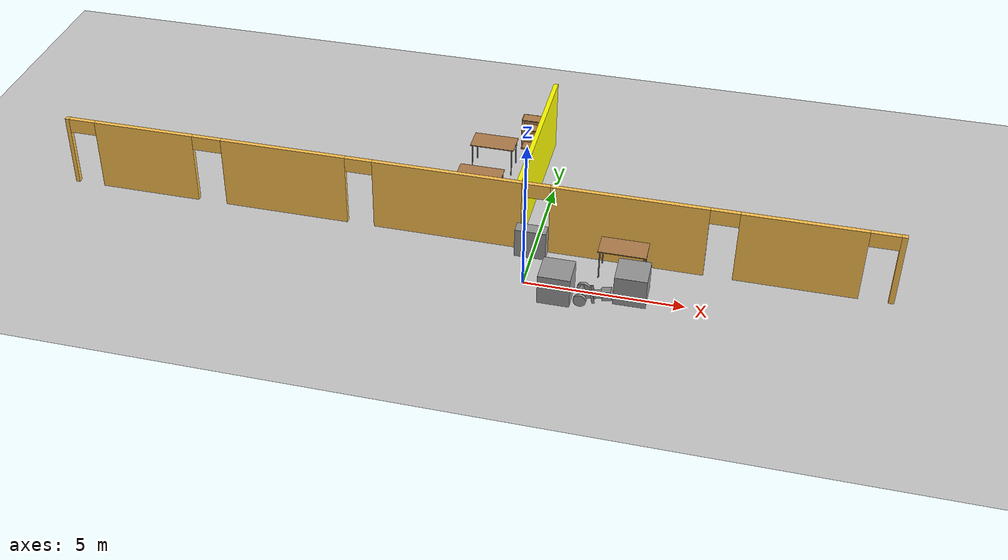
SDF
<sdf version="1.6">
 <world name="default">
  <model name="ground_plane">
   <static>1</static>
   <link name="link">
    <collision name="collision">
     <geometry><plane><normal>0 0 1</normal><size>100 100</size></plane></geometry>
     <surface><friction><ode><mu>100</mu><mu2>50</mu2></ode></friction></surface>
    </collision>
    <visual name="visual">
     <cast_shadows>0</cast_shadows>
     <geometry><plane><normal>0 0 1</normal><size>100 100</size></plane></geometry>
     <material>
      <script><uri>file://media/materials/scripts/gazebo.material</uri><name>Gazebo/Grey</name></script>
     </material>
    </visual>
   </link>
  </model>
  <model name="mybuilding">
   <pose>-2.36213 -0.825276 0 0 -0 0</pose>
   <link name="Wall_149">
    <collision name="Wall_149_Collision">
     <geometry><box><size>6 0.15 2.5</size></box></geometry>
     <pose>0 0 1.25 0 -0 0</pose>
    </collision>
    <visual name="Wall_149_Visual">
     <pose>0 0 1.25 0 -0 0</pose>
     <geometry><box><size>6 0.15 2.5</size></box></geometry>
     <material>
      <script><uri>file://media/materials/scripts/gazebo.material</uri><name>Gazebo/Grey</name></script>
      <ambient>1 1 0 1</ambient>
     </material>
     <meta><layer>0</layer></meta>
    </visual>
    <pose>1.80042 5.59279 0 0 0 -1.5708</pose>
   </link>
   <link name="Wall_94">
    <pose>0.000509 2.58798 0 0 -0 0</pose>
    <visual name="Wall_94_Visual_0">
     <pose>-13.4076 0 1.25 0 -0 0</pose>
     <geometry><box><size>0.134873 0.15 2.5</size></box></geometry>
     <material>
      <script><uri>file://media/materials/scripts/gazebo.material</uri><name>Gazebo/Grey</name></script>
      <ambient>1 0.764706 0.305882 1</ambient>
     </material>
     <meta><layer>0</layer></meta>
    </visual>
    <collision name="Wall_94_Collision_0">
     <geometry><box><size>0.134873 0.15 2.5</size></box></geometry>
     <pose>-13.4076 0 1.25 0 -0 0</pose>
    </collision>
    <visual name="Wall_94_Visual_1">
     <pose>-10.7308 0 1.25 0 -0 0</pose>
     <geometry><box><size>3.41873 0.15 2.5</size></box></geometry>
     <material>
      <script><uri>file://media/materials/scripts/gazebo.material</uri><name>Gazebo/Grey</name></script>
      <ambient>1 0.764706 0.305882 1</ambient>
     </material>
     <meta><layer>0</layer></meta>
    </visual>
    <collision name="Wall_94_Collision_1">
     <geometry><box><size>3.41873 0.15 2.5</size></box></geometry>
     <pose>-10.7308 0 1.25 0 -0 0</pose>
    </collision>
    <visual name="Wall_94_Visual_2">
     <pose>-5.94135 0 1.25 0 -0 0</pose>
     <geometry><box><size>4.19405 0.15 2.5</size></box></geometry>
     <material>
      <script><uri>file://media/materials/scripts/gazebo.material</uri><name>Gazebo/Grey</name></script>
      <ambient>1 0.764706 0.305882 1</ambient>
     </material>
     <meta><layer>0</layer></meta>
    </visual>
    <collision name="Wall_94_Collision_2">
     <geometry><box><size>4.19405 0.15 2.5</size></box></geometry>
     <pose>-5.94135 0 1.25 0 -0 0</pose>
    </collision>
    <visual name="Wall_94_Visual_3">
     <pose>-0.522336 0 1.25 0 -0 0</pose>
     <geometry><box><size>4.84399 0.15 2.5</size></box></geometry>
     <material>
      <script><uri>file://media/materials/scripts/gazebo.material</uri><name>Gazebo/Grey</name></script>
      <ambient>1 0.764706 0.305882 1</ambient>
     </material>
     <meta><layer>0</layer></meta>
    </visual>
    <collision name="Wall_94_Collision_3">
     <geometry><box><size>4.84399 0.15 2.5</size></box></geometry>
     <pose>-0.522336 0 1.25 0 -0 0</pose>
    </collision>
    <visual name="Wall_94_Visual_4">
     <pose>5.25225 0 1.25 0 -0 0</pose>
     <geometry><box><size>4.90518 0.15 2.5</size></box></geometry>
     <material>
      <script><uri>file://media/materials/scripts/gazebo.material</uri><name>Gazebo/Grey</name></script>
      <ambient>1 0.764706 0.305882 1</ambient>
     </material>
     <meta><layer>0</layer></meta>
    </visual>
    <collision name="Wall_94_Collision_4">
     <geometry><box><size>4.90518 0.15 2.5</size></box></geometry>
     <pose>5.25225 0 1.25 0 -0 0</pose>
    </collision>
    <visual name="Wall_94_Visual_5">
     <pose>10.5045 0 1.25 0 -0 0</pose>
     <geometry><box><size>3.79929 0.15 2.5</size></box></geometry>
     <material>
      <script><uri>file://media/materials/scripts/gazebo.material</uri><name>Gazebo/Grey</name></script>
      <ambient>1 0.764706 0.305882 1</ambient>
     </material>
     <meta><layer>0</layer></meta>
    </visual>
    <collision name="Wall_94_Collision_5">
     <geometry><box><size>3.79929 0.15 2.5</size></box></geometry>
     <pose>10.5045 0 1.25 0 -0 0</pose>
    </collision>
    <visual name="Wall_94_Visual_6">
     <pose>13.3896 0 1.25 0 -0 0</pose>
     <geometry><box><size>0.170873 0.15 2.5</size></box></geometry>
     <material>
      <script><uri>file://media/materials/scripts/gazebo.material</uri><name>Gazebo/Grey</name></script>
      <ambient>1 0.764706 0.305882 1</ambient>
     </material>
     <meta><layer>0</layer></meta>
    </visual>
    <collision name="Wall_94_Collision_6">
     <geometry><box><size>0.170873 0.15 2.5</size></box></geometry>
     <pose>13.3896 0 1.25 0 -0 0</pose>
    </collision>
    <visual name="Wall_94_Visual_7">
     <pose>-12.8901 0 2.25 0 -0 0</pose>
     <geometry><box><size>0.9 0.15 0.5</size></box></geometry>
     <material>
      <script><uri>file://media/materials/scripts/gazebo.material</uri><name>Gazebo/Grey</name></script>
      <ambient>1 0.764706 0.305882 1</ambient>
     </material>
     <meta><layer>0</layer></meta>
    </visual>
    <collision name="Wall_94_Collision_7">
     <geometry><box><size>0.9 0.15 0.5</size></box></geometry>
     <pose>-12.8901 0 2.25 0 -0 0</pose>
    </collision>
    <visual name="Wall_94_Visual_8">
     <pose>-8.52989 0 2.25 0 -0 0</pose>
     <geometry><box><size>0.983019 0.15 0.5</size></box></geometry>
     <material>
      <script><uri>file://media/materials/scripts/gazebo.material</uri><name>Gazebo/Grey</name></script>
      <ambient>1 0.764706 0.305882 1</ambient>
     </material>
     <meta><layer>0</layer></meta>
    </visual>
    <collision name="Wall_94_Collision_8">
     <geometry><box><size>0.983019 0.15 0.5</size></box></geometry>
     <pose>-8.52989 0 2.25 0 -0 0</pose>
    </collision>
    <visual name="Wall_94_Visual_9">
     <pose>-3.39433 0 2.25 0 -0 0</pose>
     <geometry><box><size>0.9 0.15 0.5</size></box></geometry>
     <material>
      <script><uri>file://media/materials/scripts/gazebo.material</uri><name>Gazebo/Grey</name></script>
      <ambient>1 0.764706 0.305882 1</ambient>
     </material>
     <meta><layer>0</layer></meta>
    </visual>
    <collision name="Wall_94_Collision_9">
     <geometry><box><size>0.9 0.15 0.5</size></box></geometry>
     <pose>-3.39433 0 2.25 0 -0 0</pose>
    </collision>
    <visual name="Wall_94_Visual_10">
     <pose>2.34966 0 2.25 0 -0 0</pose>
     <geometry><box><size>0.9 0.15 0.5</size></box></geometry>
     <material>
      <script><uri>file://media/materials/scripts/gazebo.material</uri><name>Gazebo/Grey</name></script>
      <ambient>1 0.764706 0.305882 1</ambient>
     </material>
     <meta><layer>0</layer></meta>
    </visual>
    <collision name="Wall_94_Collision_10">
     <geometry><box><size>0.9 0.15 0.5</size></box></geometry>
     <pose>2.34966 0 2.25 0 -0 0</pose>
    </collision>
    <visual name="Wall_94_Visual_11">
     <pose>8.15483 0 2.25 0 -0 0</pose>
     <geometry><box><size>0.9 0.15 0.5</size></box></geometry>
     <material>
      <script><uri>file://media/materials/scripts/gazebo.material</uri><name>Gazebo/Grey</name></script>
      <ambient>1 0.764706 0.305882 1</ambient>
     </material>
     <meta><layer>0</layer></meta>
    </visual>
    <collision name="Wall_94_Collision_11">
     <geometry><box><size>0.9 0.15 0.5</size></box></geometry>
     <pose>8.15483 0 2.25 0 -0 0</pose>
    </collision>
    <visual name="Wall_94_Visual_12">
     <pose>12.8541 0 2.25 0 -0 0</pose>
     <geometry><box><size>0.9 0.15 0.5</size></box></geometry>
     <material>
      <script><uri>file://media/materials/scripts/gazebo.material</uri><name>Gazebo/Grey</name></script>
      <ambient>1 0.764706 0.305882 1</ambient>
     </material>
     <meta><layer>0</layer></meta>
    </visual>
    <collision name="Wall_94_Collision_12">
     <geometry><box><size>0.9 0.15 0.5</size></box></geometry>
     <pose>12.8541 0 2.25 0 -0 0</pose>
    </collision>
   </link>
   <static>1</static>
  </model>
  <model name="robot_0">
   <link name="link_0">
    <pose>1.55233 -0.934021 0.2 0 -0 0</pose>
    <inertial>
     <mass>1</mass>
     <inertia>
      <ixx>0.166667</ixx>
      <ixy>0</ixy>
      <ixz>0</ixz>
      <iyy>0.166667</iyy>
      <iyz>0</iyz>
      <izz>0.166667</izz>
     </inertia>
    </inertial>
    <visual name="visual">
     <geometry><box><size>0.3 0.5 0.1</size></box></geometry>
     <material>
      <lighting>1</lighting>
      <script><uri>file://media/materials/scripts/gazebo.material</uri><name>Gazebo/Grey</name></script>
      <shader type="pixel"><normal_map>__default__</normal_map></shader>
      <ambient>0.3 0.3 0.3 1</ambient>
      <diffuse>0.7 0.7 0.7 1</diffuse>
      <specular>0.01 0.01 0.01 1</specular>
      <emissive>0 0 0 1</emissive>
     </material>
    </visual>
    <collision name="collision">
     <geometry><box><size>0.3 0.5 0.1</size></box></geometry>
     <surface>
      <friction>
       <ode><mu>1</mu><mu2>1</mu2><fdir1>0 0 0</fdir1><slip1>0</slip1><slip2>0</slip2></ode>
       <torsional>
        <coefficient>1</coefficient>
        <patch_radius>0</patch_radius>
        <surface_radius>0</surface_radius>
        <use_patch_radius>1</use_patch_radius>
        <ode><slip>0</slip></ode>
       </torsional>
      </friction>
      <bounce><restitution_coefficient>0</restitution_coefficient><threshold>1e+06</threshold></bounce>
      <contact>
       <collide_without_contact>0</collide_without_contact>
       <collide_without_contact_bitmask>1</collide_without_contact_bitmask>
       <collide_bitmask>1</collide_bitmask>
       <ode>
        <soft_cfm>0</soft_cfm>
        <soft_erp>0.2</soft_erp>
        <kp>1e+13</kp>
        <kd>1</kd>
        <max_vel>0.01</max_vel>
        <min_depth>0</min_depth>
       </ode>
       <bullet>
        <split_impulse>1</split_impulse>
        <split_impulse_penetration_threshold>-0.01</split_impulse_penetration_threshold>
        <soft_cfm>0</soft_cfm>
        <soft_erp>0.2</soft_erp>
        <kp>1e+13</kp>
        <kd>1</kd>
       </bullet>
      </contact>
     </surface>
    </collision>
   </link>
   <link name="link_1">
    <pose>1.55233 -1.23404 0.2 1.5707 -0 0</pose>
    <inertial>
     <mass>1</mass>
     <inertia><ixx>0.145833</ixx><ixy>0</ixy><ixz>0</ixz><iyy>0.145833</iyy><iyz>0</iyz><izz>0.125</izz></inertia>
    </inertial>
    <visual name="visual">
     <geometry><cylinder><radius>0.2</radius><length>0.1</length></cylinder></geometry>
     <material>
      <lighting>1</lighting>
      <script><uri>file://media/materials/scripts/gazebo.material</uri><name>Gazebo/Grey</name></script>
      <shader type="pixel"><normal_map>__default__</normal_map></shader>
      <ambient>0.3 0.3 0.3 1</ambient>
      <diffuse>0.7 0.7 0.7 1</diffuse>
      <specular>0.01 0.01 0.01 1</specular>
      <emissive>0 0 0 1</emissive>
     </material>
    </visual>
    <collision name="collision">
     <geometry><cylinder><radius>0.2</radius><length>0.1</length></cylinder></geometry>
     <surface>
      <friction>
       <ode><mu>1</mu><mu2>1</mu2><fdir1>0 0 0</fdir1><slip1>0</slip1><slip2>0</slip2></ode>
       <torsional>
        <coefficient>1</coefficient>
        <patch_radius>0</patch_radius>
        <surface_radius>0</surface_radius>
        <use_patch_radius>1</use_patch_radius>
        <ode><slip>0</slip></ode>
       </torsional>
      </friction>
      <bounce><restitution_coefficient>0</restitution_coefficient><threshold>1e+06</threshold></bounce>
      <contact>
       <collide_without_contact>0</collide_without_contact>
       <collide_without_contact_bitmask>1</collide_without_contact_bitmask>
       <collide_bitmask>1</collide_bitmask>
       <ode>
        <soft_cfm>0</soft_cfm>
        <soft_erp>0.2</soft_erp>
        <kp>1e+13</kp>
        <kd>1</kd>
        <max_vel>0.01</max_vel>
        <min_depth>0</min_depth>
       </ode>
       <bullet>
        <split_impulse>1</split_impulse>
        <split_impulse_penetration_threshold>-0.01</split_impulse_penetration_threshold>
        <soft_cfm>0</soft_cfm>
        <soft_erp>0.2</soft_erp>
        <kp>1e+13</kp>
        <kd>1</kd>
       </bullet>
      </contact>
     </surface>
    </collision>
   </link>
   <link name="link_1_clone">
    <pose>1.55233 -0.634002 0.2 1.5707 -0 0</pose>
    <inertial>
     <mass>1</mass>
     <inertia><ixx>0.145833</ixx><ixy>0</ixy><ixz>0</ixz><iyy>0.145833</iyy><iyz>0</iyz><izz>0.125</izz></inertia>
    </inertial>
    <visual name="visual">
     <geometry><cylinder><radius>0.2</radius><length>0.1</length></cylinder></geometry>
     <material>
      <lighting>1</lighting>
      <script><uri>file://media/materials/scripts/gazebo.material</uri><name>Gazebo/Grey</name></script>
      <shader type="pixel"><normal_map>__default__</normal_map></shader>
      <ambient>0.3 0.3 0.3 1</ambient>
      <diffuse>0.7 0.7 0.7 1</diffuse>
      <specular>0.01 0.01 0.01 1</specular>
      <emissive>0 0 0 1</emissive>
     </material>
    </visual>
    <collision name="collision">
     <geometry><cylinder><radius>0.2</radius><length>0.1</length></cylinder></geometry>
     <surface>
      <friction>
       <ode><mu>1</mu><mu2>1</mu2><fdir1>0 0 0</fdir1><slip1>0</slip1><slip2>0</slip2></ode>
       <torsional>
        <coefficient>1</coefficient>
        <patch_radius>0</patch_radius>
        <surface_radius>0</surface_radius>
        <use_patch_radius>1</use_patch_radius>
        <ode><slip>0</slip></ode>
       </torsional>
      </friction>
      <bounce><restitution_coefficient>0</restitution_coefficient><threshold>1e+06</threshold></bounce>
      <contact>
       <collide_without_contact>0</collide_without_contact>
       <collide_without_contact_bitmask>1</collide_without_contact_bitmask>
       <collide_bitmask>1</collide_bitmask>
       <ode>
        <soft_cfm>0</soft_cfm>
        <soft_erp>0.2</soft_erp>
        <kp>1e+13</kp>
        <kd>1</kd>
        <max_vel>0.01</max_vel>
        <min_depth>0</min_depth>
       </ode>
       <bullet>
        <split_impulse>1</split_impulse>
        <split_impulse_penetration_threshold>-0.01</split_impulse_penetration_threshold>
        <soft_cfm>0</soft_cfm>
        <soft_erp>0.2</soft_erp>
        <kp>1e+13</kp>
        <kd>1</kd>
       </bullet>
      </contact>
     </surface>
    </collision>
   </link>
   <link name="link_2">
    <pose>1.55233 -0.934021 0.54 0 -0 0</pose>
    <inertial>
     <mass>1</mass>
     <inertia>
      <ixx>0.166667</ixx>
      <ixy>0</ixy>
      <ixz>0</ixz>
      <iyy>0.166667</iyy>
      <iyz>0</iyz>
      <izz>0.166667</izz>
     </inertia>
    </inertial>
    <visual name="visual">
     <geometry><box><size>0.2 0.2 0.6</size></box></geometry>
     <material>
      <lighting>1</lighting>
      <script><uri>file://media/materials/scripts/gazebo.material</uri><name>Gazebo/Grey</name></script>
      <shader type="pixel"><normal_map>__default__</normal_map></shader>
      <ambient>0.3 0.3 0.3 1</ambient>
      <diffuse>0.7 0.7 0.7 1</diffuse>
      <specular>0.01 0.01 0.01 1</specular>
      <emissive>0 0 0 1</emissive>
     </material>
    </visual>
    <collision name="collision">
     <geometry><box><size>0.2 0.2 0.6</size></box></geometry>
     <surface>
      <friction>
       <ode><mu>1</mu><mu2>1</mu2><fdir1>0 0 0</fdir1><slip1>0</slip1><slip2>0</slip2></ode>
       <torsional>
        <coefficient>1</coefficient>
        <patch_radius>0</patch_radius>
        <surface_radius>0</surface_radius>
        <use_patch_radius>1</use_patch_radius>
        <ode><slip>0</slip></ode>
       </torsional>
      </friction>
      <bounce><restitution_coefficient>0</restitution_coefficient><threshold>1e+06</threshold></bounce>
      <contact>
       <collide_without_contact>0</collide_without_contact>
       <collide_without_contact_bitmask>1</collide_without_contact_bitmask>
       <collide_bitmask>1</collide_bitmask>
       <ode>
        <soft_cfm>0</soft_cfm>
        <soft_erp>0.2</soft_erp>
        <kp>1e+13</kp>
        <kd>1</kd>
        <max_vel>0.01</max_vel>
        <min_depth>0</min_depth>
       </ode>
       <bullet>
        <split_impulse>1</split_impulse>
        <split_impulse_penetration_threshold>-0.01</split_impulse_penetration_threshold>
        <soft_cfm>0</soft_cfm>
        <soft_erp>0.2</soft_erp>
        <kp>1e+13</kp>
        <kd>1</kd>
       </bullet>
      </contact>
     </surface>
    </collision>
   </link>
   <link name="link_3">
    <pose>1.55233 -0.934021 0.99 0 -0 0</pose>
    <inertial>
     <mass>1</mass>
     <inertia>
      <ixx>0.166667</ixx>
      <ixy>0</ixy>
      <ixz>0</ixz>
      <iyy>0.166667</iyy>
      <iyz>0</iyz>
      <izz>0.166667</izz>
     </inertia>
    </inertial>
    <visual name="visual">
     <geometry><box><size>0.3 0.3 0.3</size></box></geometry>
     <material>
      <lighting>1</lighting>
      <script><uri>file://media/materials/scripts/gazebo.material</uri><name>Gazebo/Grey</name></script>
      <shader type="pixel"><normal_map>__default__</normal_map></shader>
      <ambient>0.3 0.3 0.3 1</ambient>
      <diffuse>0.7 0.7 0.7 1</diffuse>
      <specular>0.01 0.01 0.01 1</specular>
      <emissive>0 0 0 1</emissive>
     </material>
    </visual>
    <collision name="collision">
     <geometry><box><size>0.3 0.3 0.3</size></box></geometry>
     <surface>
      <friction>
       <ode><mu>1</mu><mu2>1</mu2><fdir1>0 0 0</fdir1><slip1>0</slip1><slip2>0</slip2></ode>
       <torsional>
        <coefficient>1</coefficient>
        <patch_radius>0</patch_radius>
        <surface_radius>0</surface_radius>
        <use_patch_radius>1</use_patch_radius>
        <ode><slip>0</slip></ode>
       </torsional>
      </friction>
      <bounce><restitution_coefficient>0</restitution_coefficient><threshold>1e+06</threshold></bounce>
      <contact>
       <collide_without_contact>0</collide_without_contact>
       <collide_without_contact_bitmask>1</collide_without_contact_bitmask>
       <collide_bitmask>1</collide_bitmask>
       <ode>
        <soft_cfm>0</soft_cfm>
        <soft_erp>0.2</soft_erp>
        <kp>1e+13</kp>
        <kd>1</kd>
        <max_vel>0.01</max_vel>
        <min_depth>0</min_depth>
       </ode>
       <bullet>
        <split_impulse>1</split_impulse>
        <split_impulse_penetration_threshold>-0.01</split_impulse_penetration_threshold>
        <soft_cfm>0</soft_cfm>
        <soft_erp>0.2</soft_erp>
        <kp>1e+13</kp>
        <kd>1</kd>
       </bullet>
      </contact>
     </surface>
    </collision>
   </link>
   <link name="link_4_clone">
    <pose>1.57233 -0.819719 0.54 0 -0 0</pose>
    <inertial>
     <mass>1</mass>
     <inertia>
      <ixx>0.166667</ixx>
      <ixy>0</ixy>
      <ixz>0</ixz>
      <iyy>0.166667</iyy>
      <iyz>0</iyz>
      <izz>0.166667</izz>
     </inertia>
    </inertial>
    <visual name="visual">
     <geometry><box><size>0.5 0.03 0.08</size></box></geometry>
     <material>
      <lighting>1</lighting>
      <script><uri>file://media/materials/scripts/gazebo.material</uri><name>Gazebo/Grey</name></script>
      <shader type="pixel"><normal_map>__default__</normal_map></shader>
      <ambient>0.3 0.3 0.3 1</ambient>
      <diffuse>0.7 0.7 0.7 1</diffuse>
      <specular>0.01 0.01 0.01 1</specular>
      <emissive>0 0 0 1</emissive>
     </material>
    </visual>
    <collision name="collision">
     <geometry><box><size>0.5 0.03 0.08</size></box></geometry>
     <surface>
      <friction>
       <ode><mu>1</mu><mu2>1</mu2><fdir1>0 0 0</fdir1><slip1>0</slip1><slip2>0</slip2></ode>
       <torsional>
        <coefficient>1</coefficient>
        <patch_radius>0</patch_radius>
        <surface_radius>0</surface_radius>
        <use_patch_radius>1</use_patch_radius>
        <ode><slip>0</slip></ode>
       </torsional>
      </friction>
      <bounce><restitution_coefficient>0</restitution_coefficient><threshold>1e+06</threshold></bounce>
      <contact>
       <collide_without_contact>0</collide_without_contact>
       <collide_without_contact_bitmask>1</collide_without_contact_bitmask>
       <collide_bitmask>1</collide_bitmask>
       <ode>
        <soft_cfm>0</soft_cfm>
        <soft_erp>0.2</soft_erp>
        <kp>1e+13</kp>
        <kd>1</kd>
        <max_vel>0.01</max_vel>
        <min_depth>0</min_depth>
       </ode>
       <bullet>
        <split_impulse>1</split_impulse>
        <split_impulse_penetration_threshold>-0.01</split_impulse_penetration_threshold>
        <soft_cfm>0</soft_cfm>
        <soft_erp>0.2</soft_erp>
        <kp>1e+13</kp>
        <kd>1</kd>
       </bullet>
      </contact>
     </surface>
    </collision>
   </link>
   <link name="link_4_clone_clone">
    <pose>1.57233 -1.04902 0.54 0 -0 0</pose>
    <inertial>
     <mass>1</mass>
     <inertia>
      <ixx>0.166667</ixx>
      <ixy>0</ixy>
      <ixz>0</ixz>
      <iyy>0.166667</iyy>
      <iyz>0</iyz>
      <izz>0.166667</izz>
     </inertia>
    </inertial>
    <visual name="visual">
     <geometry><box><size>0.5 0.03 0.08</size></box></geometry>
     <material>
      <lighting>1</lighting>
      <script><uri>file://media/materials/scripts/gazebo.material</uri><name>Gazebo/Grey</name></script>
      <shader type="pixel"><normal_map>__default__</normal_map></shader>
      <ambient>0.3 0.3 0.3 1</ambient>
      <diffuse>0.7 0.7 0.7 1</diffuse>
      <specular>0.01 0.01 0.01 1</specular>
      <emissive>0 0 0 1</emissive>
     </material>
    </visual>
    <collision name="collision">
     <geometry><box><size>0.5 0.03 0.08</size></box></geometry>
     <surface>
      <friction>
       <ode><mu>1</mu><mu2>1</mu2><fdir1>0 0 0</fdir1><slip1>0</slip1><slip2>0</slip2></ode>
       <torsional>
        <coefficient>1</coefficient>
        <patch_radius>0</patch_radius>
        <surface_radius>0</surface_radius>
        <use_patch_radius>1</use_patch_radius>
        <ode><slip>0</slip></ode>
       </torsional>
      </friction>
      <bounce><restitution_coefficient>0</restitution_coefficient><threshold>1e+06</threshold></bounce>
      <contact>
       <collide_without_contact>0</collide_without_contact>
       <collide_without_contact_bitmask>1</collide_without_contact_bitmask>
       <collide_bitmask>1</collide_bitmask>
       <ode>
        <soft_cfm>0</soft_cfm>
        <soft_erp>0.2</soft_erp>
        <kp>1e+13</kp>
        <kd>1</kd>
        <max_vel>0.01</max_vel>
        <min_depth>0</min_depth>
       </ode>
       <bullet>
        <split_impulse>1</split_impulse>
        <split_impulse_penetration_threshold>-0.01</split_impulse_penetration_threshold>
        <soft_cfm>0</soft_cfm>
        <soft_erp>0.2</soft_erp>
        <kp>1e+13</kp>
        <kd>1</kd>
       </bullet>
      </contact>
     </surface>
    </collision>
   </link>
   <joint name="link_0_JOINT_1" type="revolute">
    <parent>link_0</parent>
    <child>link_1</child>
    <axis>
     <xyz>1 0 0</xyz>
     <use_parent_model_frame>0</use_parent_model_frame>
     <limit>
      <lower>-1.79769e+308</lower>
      <upper>1.79769e+308</upper>
      <effort>-1</effort>
      <velocity>-1</velocity>
     </limit>
     <dynamics>
      <spring_reference>0</spring_reference>
      <spring_stiffness>0</spring_stiffness>
      <damping>0</damping>
     </dynamics>
    </axis>
    <physics>
     <ode><limit><cfm>0</cfm><erp>0.2</erp></limit><suspension><cfm>0</cfm><erp>0.2</erp></suspension></ode>
    </physics>
   </joint>
   <joint name="link_0_JOINT_2" type="revolute">
    <parent>link_0</parent>
    <child>link_1_clone</child>
    <axis>
     <xyz>1 0 0</xyz>
     <use_parent_model_frame>0</use_parent_model_frame>
     <limit>
      <lower>-1.79769e+308</lower>
      <upper>1.79769e+308</upper>
      <effort>-1</effort>
      <velocity>-1</velocity>
     </limit>
     <dynamics>
      <spring_reference>0</spring_reference>
      <spring_stiffness>0</spring_stiffness>
      <damping>0</damping>
     </dynamics>
    </axis>
    <physics>
     <ode><limit><cfm>0</cfm><erp>0.2</erp></limit><suspension><cfm>0</cfm><erp>0.2</erp></suspension></ode>
    </physics>
   </joint>
   <joint name="link_0_JOINT_6" type="fixed">
    <parent>link_0</parent>
    <child>link_2</child>
    <physics>
     <ode><limit><cfm>0</cfm><erp>0.2</erp></limit><suspension><cfm>0</cfm><erp>0.2</erp></suspension></ode>
    </physics>
   </joint>
   <joint name="link_2_JOINT_12" type="revolute">
    <parent>link_2</parent>
    <child>link_4_clone</child>
    <axis>
     <xyz>0 0 1</xyz>
     <use_parent_model_frame>0</use_parent_model_frame>
     <limit>
      <lower>-1.79769e+308</lower>
      <upper>1.79769e+308</upper>
      <effort>-1</effort>
      <velocity>-1</velocity>
     </limit>
     <dynamics>
      <spring_reference>0</spring_reference>
      <spring_stiffness>0</spring_stiffness>
      <damping>0</damping>
     </dynamics>
    </axis>
    <physics>
     <ode><limit><cfm>0</cfm><erp>0.2</erp></limit><suspension><cfm>0</cfm><erp>0.2</erp></suspension></ode>
    </physics>
   </joint>
   <joint name="link_2_JOINT_7" type="fixed">
    <parent>link_2</parent>
    <child>link_3</child>
    <physics>
     <ode><limit><cfm>0</cfm><erp>0.2</erp></limit><suspension><cfm>0</cfm><erp>0.2</erp></suspension></ode>
    </physics>
   </joint>
   <joint name="link_2_JOINT_8" type="revolute">
    <parent>link_2</parent>
    <child>link_4_clone_clone</child>
    <axis>
     <xyz>0 0 1</xyz>
     <use_parent_model_frame>0</use_parent_model_frame>
     <limit>
      <lower>-1.79769e+308</lower>
      <upper>1.79769e+308</upper>
      <effort>-1</effort>
      <velocity>-1</velocity>
     </limit>
     <dynamics>
      <spring_reference>0</spring_reference>
      <spring_stiffness>0</spring_stiffness>
      <damping>0</damping>
      <friction>0</friction>
     </dynamics>
    </axis>
    <physics>
     <ode><limit><cfm>0</cfm><erp>0.2</erp></limit><suspension><cfm>0</cfm><erp>0.2</erp></suspension></ode>
    </physics>
   </joint>
   <static>0</static>
   <pose>1.37662 0.579234 1.67425 2e-06 1.35642 -0.016645</pose>
  </model>
  <model name="bookshelf_0">
   <static>1</static>
   <link name="link">
    <inertial><mass>1</mass></inertial>
    <collision name="back">
     <pose>0 0.005 0.6 0 -0 0</pose>
     <geometry><box><size>0.9 0.01 1.2</size></box></geometry>
    </collision>
    <visual name="visual1">
     <pose>0 0.005 0.6 0 -0 0</pose>
     <geometry><box><size>0.9 0.01 1.2</size></box></geometry>
     <material>
      <script><uri>file://media/materials/scripts/gazebo.material</uri><name>Gazebo/Wood</name></script>
     </material>
    </visual>
    <collision name="left_side">
     <pose>0.45 -0.195 0.6 0 -0 0</pose>
     <geometry><box><size>0.02 0.4 1.2</size></box></geometry>
    </collision>
    <visual name="visual2">
     <pose>0.45 -0.195 0.6 0 -0 0</pose>
     <geometry><box><size>0.02 0.4 1.2</size></box></geometry>
     <material>
      <script><uri>file://media/materials/scripts/gazebo.material</uri><name>Gazebo/Wood</name></script>
     </material>
    </visual>
    <collision name="right_side">
     <pose>-0.45 -0.195 0.6 0 -0 0</pose>
     <geometry><box><size>0.02 0.4 1.2</size></box></geometry>
    </collision>
    <visual name="visual3">
     <pose>-0.45 -0.195 0.6 0 -0 0</pose>
     <geometry><box><size>0.02 0.4 1.2</size></box></geometry>
     <material>
      <script><uri>file://media/materials/scripts/gazebo.material</uri><name>Gazebo/Wood</name></script>
     </material>
    </visual>
    <collision name="bottom">
     <pose>0 -0.195 0.03 0 -0 0</pose>
     <geometry><box><size>0.88 0.4 0.06</size></box></geometry>
    </collision>
    <visual name="visual4">
     <pose>0 -0.195 0.03 0 -0 0</pose>
     <geometry><box><size>0.88 0.4 0.06</size></box></geometry>
     <material>
      <script><uri>file://media/materials/scripts/gazebo.material</uri><name>Gazebo/Wood</name></script>
     </material>
    </visual>
    <collision name="top">
     <pose>0 -0.195 1.19 0 -0 0</pose>
     <geometry><box><size>0.88 0.4 0.02</size></box></geometry>
    </collision>
    <visual name="visual5">
     <pose>0 -0.195 1.19 0 -0 0</pose>
     <geometry><box><size>0.88 0.4 0.02</size></box></geometry>
     <material>
      <script><uri>file://media/materials/scripts/gazebo.material</uri><name>Gazebo/Wood</name></script>
     </material>
    </visual>
    <collision name="low_shelf">
     <pose>0 -0.195 0.43 0 -0 0</pose>
     <geometry><box><size>0.88 0.4 0.02</size></box></geometry>
    </collision>
    <visual name="visual6">
     <pose>0 -0.195 0.43 0 -0 0</pose>
     <geometry><box><size>0.88 0.4 0.02</size></box></geometry>
     <material>
      <script><uri>file://media/materials/scripts/gazebo.material</uri><name>Gazebo/Wood</name></script>
     </material>
    </visual>
    <collision name="high_shelf">
     <pose>0 -0.195 0.8 0 -0 0</pose>
     <geometry><box><size>0.88 0.4 0.02</size></box></geometry>
    </collision>
    <visual name="visual7">
     <pose>0 -0.195 0.8 0 -0 0</pose>
     <geometry><box><size>0.88 0.4 0.02</size></box></geometry>
     <material>
      <script><uri>file://media/materials/scripts/gazebo.material</uri><name>Gazebo/Wood</name></script>
     </material>
    </visual>
   </link>
   <pose>-1.15819 7.65818 0 0 -0 0</pose>
  </model>
  <model name="table_4">
   <static>1</static>
   <link name="link">
    <collision name="surface">
     <pose>0 0 1 0 -0 0</pose>
     <geometry><box><size>1.5 0.8 0.03</size></box></geometry>
     <surface><friction><ode><mu>0.6</mu><mu2>0.6</mu2></ode></friction></surface>
    </collision>
    <visual name="visual1">
     <pose>0 0 1 0 -0 0</pose>
     <geometry><box><size>1.5 0.8 0.03</size></box></geometry>
     <material>
      <script><uri>file://media/materials/scripts/gazebo.material</uri><name>Gazebo/Wood</name></script>
     </material>
    </visual>
    <collision name="front_left_leg">
     <pose>0.68 0.38 0.5 0 -0 0</pose>
     <geometry><cylinder><radius>0.02</radius><length>1</length></cylinder></geometry>
    </collision>
    <visual name="front_left_leg">
     <pose>0.68 0.38 0.5 0 -0 0</pose>
     <geometry><cylinder><radius>0.02</radius><length>1</length></cylinder></geometry>
     <material>
      <script><uri>file://media/materials/scripts/gazebo.material</uri><name>Gazebo/Grey</name></script>
     </material>
    </visual>
    <collision name="front_right_leg">
     <pose>0.68 -0.38 0.5 0 -0 0</pose>
     <geometry><cylinder><radius>0.02</radius><length>1</length></cylinder></geometry>
    </collision>
    <visual name="front_right_leg">
     <pose>0.68 -0.38 0.5 0 -0 0</pose>
     <geometry><cylinder><radius>0.02</radius><length>1</length></cylinder></geometry>
     <material>
      <script><uri>file://media/materials/scripts/gazebo.material</uri><name>Gazebo/Grey</name></script>
     </material>
    </visual>
    <collision name="back_right_leg">
     <pose>-0.68 -0.38 0.5 0 -0 0</pose>
     <geometry><cylinder><radius>0.02</radius><length>1</length></cylinder></geometry>
    </collision>
    <visual name="back_right_leg">
     <pose>-0.68 -0.38 0.5 0 -0 0</pose>
     <geometry><cylinder><radius>0.02</radius><length>1</length></cylinder></geometry>
     <material>
      <script><uri>file://media/materials/scripts/gazebo.material</uri><name>Gazebo/Grey</name></script>
     </material>
    </visual>
    <collision name="back_left_leg">
     <pose>-0.68 0.38 0.5 0 -0 0</pose>
     <geometry><cylinder><radius>0.02</radius><length>1</length></cylinder></geometry>
    </collision>
    <visual name="back_left_leg">
     <pose>-0.68 0.38 0.5 0 -0 0</pose>
     <geometry><cylinder><radius>0.02</radius><length>1</length></cylinder></geometry>
     <material>
      <script><uri>file://media/materials/scripts/gazebo.material</uri><name>Gazebo/Grey</name></script>
     </material>
    </visual>
   </link>
   <pose>-2.29403 5.98283 0 0 -0 0</pose>
  </model>
  <model name="table_5">
   <static>1</static>
   <link name="link">
    <collision name="surface">
     <pose>0 0 1 0 -0 0</pose>
     <geometry><box><size>1.5 0.8 0.03</size></box></geometry>
     <surface><friction><ode><mu>0.6</mu><mu2>0.6</mu2></ode></friction></surface>
    </collision>
    <visual name="visual1">
     <pose>0 0 1 0 -0 0</pose>
     <geometry><box><size>1.5 0.8 0.03</size></box></geometry>
     <material>
      <script><uri>file://media/materials/scripts/gazebo.material</uri><name>Gazebo/Wood</name></script>
     </material>
    </visual>
    <collision name="front_left_leg">
     <pose>0.68 0.38 0.5 0 -0 0</pose>
     <geometry><cylinder><radius>0.02</radius><length>1</length></cylinder></geometry>
    </collision>
    <visual name="front_left_leg">
     <pose>0.68 0.38 0.5 0 -0 0</pose>
     <geometry><cylinder><radius>0.02</radius><length>1</length></cylinder></geometry>
     <material>
      <script><uri>file://media/materials/scripts/gazebo.material</uri><name>Gazebo/Grey</name></script>
     </material>
    </visual>
    <collision name="front_right_leg">
     <pose>0.68 -0.38 0.5 0 -0 0</pose>
     <geometry><cylinder><radius>0.02</radius><length>1</length></cylinder></geometry>
    </collision>
    <visual name="front_right_leg">
     <pose>0.68 -0.38 0.5 0 -0 0</pose>
     <geometry><cylinder><radius>0.02</radius><length>1</length></cylinder></geometry>
     <material>
      <script><uri>file://media/materials/scripts/gazebo.material</uri><name>Gazebo/Grey</name></script>
     </material>
    </visual>
    <collision name="back_right_leg">
     <pose>-0.68 -0.38 0.5 0 -0 0</pose>
     <geometry><cylinder><radius>0.02</radius><length>1</length></cylinder></geometry>
    </collision>
    <visual name="back_right_leg">
     <pose>-0.68 -0.38 0.5 0 -0 0</pose>
     <geometry><cylinder><radius>0.02</radius><length>1</length></cylinder></geometry>
     <material>
      <script><uri>file://media/materials/scripts/gazebo.material</uri><name>Gazebo/Grey</name></script>
     </material>
    </visual>
    <collision name="back_left_leg">
     <pose>-0.68 0.38 0.5 0 -0 0</pose>
     <geometry><cylinder><radius>0.02</radius><length>1</length></cylinder></geometry>
    </collision>
    <visual name="back_left_leg">
     <pose>-0.68 0.38 0.5 0 -0 0</pose>
     <geometry><cylinder><radius>0.02</radius><length>1</length></cylinder></geometry>
     <material>
      <script><uri>file://media/materials/scripts/gazebo.material</uri><name>Gazebo/Grey</name></script>
     </material>
    </visual>
   </link>
   <pose>-2.33569 4.02364 0 0 -0 0</pose>
  </model>
  <model name="table_14">
   <static>1</static>
   <link name="link">
    <collision name="surface">
     <pose>0 0 1 0 -0 0</pose>
     <geometry><box><size>1.5 0.8 0.03</size></box></geometry>
     <surface><friction><ode><mu>0.6</mu><mu2>0.6</mu2></ode></friction></surface>
    </collision>
    <visual name="visual1">
     <pose>0 0 1 0 -0 0</pose>
     <geometry><box><size>1.5 0.8 0.03</size></box></geometry>
     <material>
      <script><uri>file://media/materials/scripts/gazebo.material</uri><name>Gazebo/Wood</name></script>
     </material>
    </visual>
    <collision name="front_left_leg">
     <pose>0.68 0.38 0.5 0 -0 0</pose>
     <geometry><cylinder><radius>0.02</radius><length>1</length></cylinder></geometry>
    </collision>
    <visual name="front_left_leg">
     <pose>0.68 0.38 0.5 0 -0 0</pose>
     <geometry><cylinder><radius>0.02</radius><length>1</length></cylinder></geometry>
     <material>
      <script><uri>file://media/materials/scripts/gazebo.material</uri><name>Gazebo/Grey</name></script>
     </material>
    </visual>
    <collision name="front_right_leg">
     <pose>0.68 -0.38 0.5 0 -0 0</pose>
     <geometry><cylinder><radius>0.02</radius><length>1</length></cylinder></geometry>
    </collision>
    <visual name="front_right_leg">
     <pose>0.68 -0.38 0.5 0 -0 0</pose>
     <geometry><cylinder><radius>0.02</radius><length>1</length></cylinder></geometry>
     <material>
      <script><uri>file://media/materials/scripts/gazebo.material</uri><name>Gazebo/Grey</name></script>
     </material>
    </visual>
    <collision name="back_right_leg">
     <pose>-0.68 -0.38 0.5 0 -0 0</pose>
     <geometry><cylinder><radius>0.02</radius><length>1</length></cylinder></geometry>
    </collision>
    <visual name="back_right_leg">
     <pose>-0.68 -0.38 0.5 0 -0 0</pose>
     <geometry><cylinder><radius>0.02</radius><length>1</length></cylinder></geometry>
     <material>
      <script><uri>file://media/materials/scripts/gazebo.material</uri><name>Gazebo/Grey</name></script>
     </material>
    </visual>
    <collision name="back_left_leg">
     <pose>-0.68 0.38 0.5 0 -0 0</pose>
     <geometry><cylinder><radius>0.02</radius><length>1</length></cylinder></geometry>
    </collision>
    <visual name="back_left_leg">
     <pose>-0.68 0.38 0.5 0 -0 0</pose>
     <geometry><cylinder><radius>0.02</radius><length>1</length></cylinder></geometry>
     <material>
      <script><uri>file://media/materials/scripts/gazebo.material</uri><name>Gazebo/Grey</name></script>
     </material>
    </visual>
   </link>
   <pose>2.89006 1.18 0 0 -0 0</pose>
  </model>
  <model name="unit_box">
   <pose>-0.062374 1.46474 0.499995 -1e-06 -1e-05 -0</pose>
   <link name="link">
    <inertial>
     <mass>1</mass>
     <inertia>
      <ixx>0.166667</ixx>
      <ixy>0</ixy>
      <ixz>0</ixz>
      <iyy>0.166667</iyy>
      <iyz>0</iyz>
      <izz>0.166667</izz>
     </inertia>
    </inertial>
    <collision name="collision"><geometry><box><size>1 0.409484 1</size></box></geometry></collision>
    <visual name="visual">
     <geometry><box><size>1 0.409484 1</size></box></geometry>
     <material>
      <script><name>Gazebo/Grey</name><uri>file://media/materials/scripts/gazebo.material</uri></script>
     </material>
    </visual>
   </link>
  </model>
  <model name="unit_box_0">
   <pose>1.09143 -0.340639 0.499995 0 1e-05 0</pose>
   <link name="link">
    <inertial>
     <mass>1</mass>
     <inertia>
      <ixx>0.166667</ixx>
      <ixy>0</ixy>
      <ixz>0</ixz>
      <iyy>0.166667</iyy>
      <iyz>0</iyz>
      <izz>0.166667</izz>
     </inertia>
    </inertial>
    <collision name="collision"><geometry><box><size>1 1 1</size></box></geometry></collision>
    <visual name="visual">
     <geometry><box><size>1 1 1</size></box></geometry>
     <material>
      <script><name>Gazebo/Grey</name><uri>file://media/materials/scripts/gazebo.material</uri></script>
     </material>
    </visual>
   </link>
  </model>
  <model name="unit_box_1">
   <pose>3.33538 0.150424 0.5 0 -0 0.010685</pose>
   <link name="link">
    <inertial>
     <mass>1</mass>
     <inertia>
      <ixx>0.166667</ixx>
      <ixy>0</ixy>
      <ixz>0</ixz>
      <iyy>0.166667</iyy>
      <iyz>0</iyz>
      <izz>0.166667</izz>
     </inertia>
    </inertial>
    <collision name="collision"><geometry><box><size>1 1 1</size></box></geometry></collision>
    <visual name="visual">
     <geometry><box><size>1 1 1</size></box></geometry>
     <material>
      <script><name>Gazebo/Grey</name><uri>file://media/materials/scripts/gazebo.material</uri></script>
     </material>
    </visual>
   </link>
  </model>
 </world>
</sdf>
